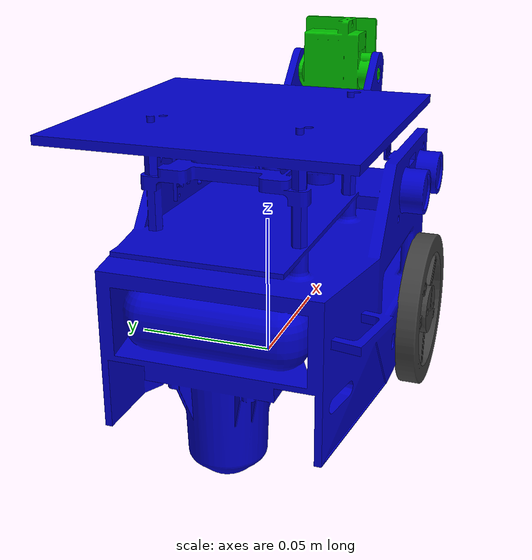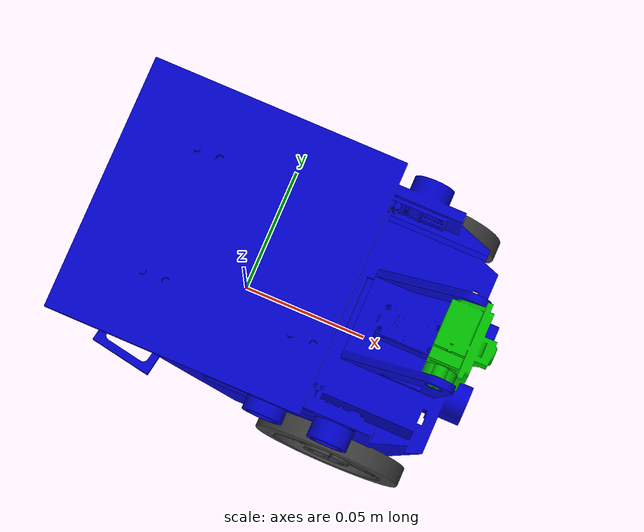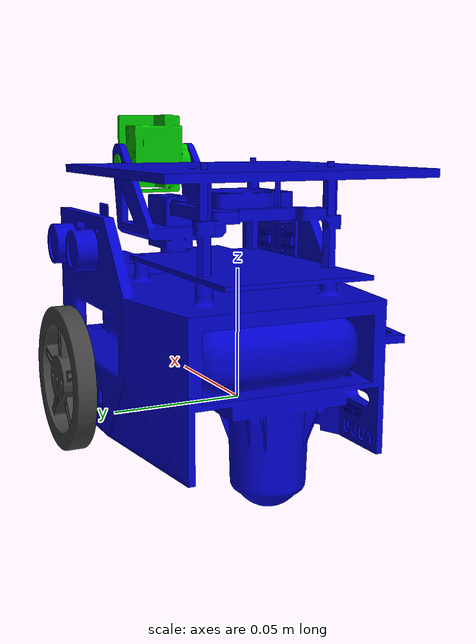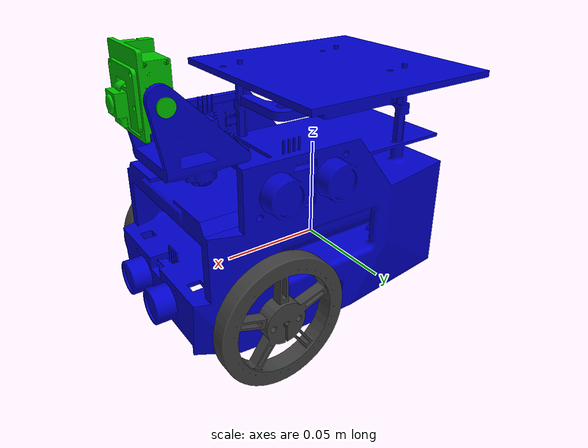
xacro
<?xml version="1.0"?>
<robot xmlns:xacro="http://www.ros.org/wiki/xacro" name="raspuma">

    <xacro:include filename="$(find raspuma_description)/urdf/raspuma.gazebo.xacro" />

    <link name="basefoot_print" />

    <joint name="basefoot_print_to_base_link_joint" type="fixed">
        <parent link="basefoot_print"/>
        <child link="base_link"/>
        <origin xyz="0.0 0.0 0.03" rpy="0.0 0.0 0.0"/>
    </joint>

    <link
        name="base_link">
        <inertial>
        <origin
            xyz="0.0 0.0 0.0"
            rpy="0 0 0" />
        <mass
            value="0.46603" />
        <inertia
            ixx="0.00051729"
            ixy="4.9118E-07"
            ixz="3.484E-08"
            iyy="0.00069099"
            iyz="-3.9114E-06"
            izz="0.00031881" />
        </inertial>
        <visual>
        <origin
            xyz="-0.27 0.013 0"
            rpy="0 0 1.57" />
        <geometry>
            <mesh
            filename="package://raspuma_description/meshes/base_link.STL" />
        </geometry>
        <material
            name="Blue">
            <color
            rgba="0 0 0.8 1" />
        </material>
        </visual>
        <collision>
        <origin
            xyz="0 0 0"
            rpy="0 0 0" />
        <geometry>
            <mesh
            filename="package://raspuma_description/meshes/base_link.STL" />
        </geometry>
        </collision>
    </link>

    <link
        name="right_wheel">
        <inertial>
        <origin
            xyz="0.0 0.0 0.0"
            rpy="0 0 0.0" />
        <mass
            value="0.012327" />
        <inertia
            ixx="3.5553E-06"
            ixy="-1.4437E-19"
            ixz="-9.4595E-19"
            iyy="3.5532E-06"
            iyz="-7.3105E-11"
            izz="6.9784E-06" />
        </inertial>
        <visual>
        <origin
            xyz="0 0 0"
            rpy="0 0 0" />
        <geometry>
            <mesh
            filename="package://raspuma_description/meshes/right_wheel.STL" />
        </geometry>
        <material
            name="grey">
            <color
            rgba="0.25098 0.25098 0.25098 1" />
        </material>
        </visual>
        <collision>
        <origin
            xyz="0 0 0"
            rpy="0 0 0" />
        <geometry>
            <mesh
            filename="package://raspuma_description/meshes/right_wheel.STL" />
        </geometry>
        </collision>
    </link>

    <joint
        name="base_right_to_wheel_joint"
        type="continuous">
        <origin
        xyz="0.055 0.045 -0.03"
        rpy="1.5708 0.0 0.0" />
        <parent
        link="base_link" />
        <child
        link="right_wheel" />
        <axis
        xyz="0 0 1" />
        <limit
        effort="0.08"
        velocity="18" />
    </joint>

    <link
        name="left_wheel">
        <inertial>
        <origin
            xyz="0.0 0.0 0.0"
            rpy="0 0 0" />
        <mass
            value="0.012327" />
        <inertia
            ixx="3.5552E-06"
            ixy="-3.7977E-10"
            ixz="-1.3221E-11"
            iyy="3.5532E-06"
            iyz="-7.19E-11"
            izz="6.9784E-06" />
        </inertial>
        <visual>
        <origin
            xyz="0 0 0"
            rpy="0 0 0" />
        <geometry>
            <mesh
            filename="package://raspuma_description/meshes/left_wheel.STL" />
        </geometry>
        <material
            name="grey">
            <color
            rgba="0.25098 0.25098 0.25098 1" />
        </material>
        </visual>
        <collision>
        <origin
            xyz="0 0 0"
            rpy="0 0 0" />
        <geometry>
            <mesh
            filename="package://raspuma_description/meshes/left_wheel.STL" />
        </geometry>
        </collision>
    </link>

    <joint
        name="base_left_to_wheel_joint"
        type="continuous">
        <origin
        xyz="0.055 -0.045 -0.03"
        rpy="1.5708 0 0.0" />
        <parent
        link="base_link" />
        <child
        link="left_wheel" />
        <axis
        xyz="0 0 1" />
        <limit
        effort="0.08"
        velocity="18" />
    </joint>
    <link
        name="body_cam">
        <inertial>
        <origin
            xyz="0.0077589 -0.00011356 0.014985"
            rpy="0 0 0" />
        <mass
            value="0.015993" />
        <inertia
            ixx="1.8893E-06"
            ixy="-1.7136E-07"
            ixz="-3.8471E-07"
            iyy="2.2804E-06"
            iyz="-3.8442E-07"
            izz="2.667E-06" />
        </inertial>
        <visual>
        <origin
            xyz="0 0 0"
            rpy="0 0 0" />
        <geometry>
            <mesh
            filename="package://raspuma_description/meshes/body_cam.STL" />
        </geometry>
        <material
            name="Blue_1">
            <color
            rgba="0 0 0.8 1" />
        </material>
        </visual>
        <collision>
        <origin
            xyz="0 0 0"
            rpy="0 0 0" />
        <geometry>
            <mesh
            filename="package://raspuma_description/meshes/body_cam.STL" />
        </geometry>
        </collision>
    </link>
    <joint
        name="base_to_body_cam"
        type="revolute">
        <origin
        xyz="0.06  0.0 0.019"
        rpy="0 0 0" />
        <parent
        link="base_link" />
        <child
        link="body_cam" />
        <axis
        xyz="0 0 1" />
        <limit
        lower="-1.57"
        upper="1.57"
        effort="0.176"
        velocity="0.166" />
    </joint>
    <link
        name="camera">
        <inertial>
        <origin
            xyz="0.0028256 0.00019085 0.0036585"
            rpy="0 0 0" />
        <mass
            value="0.011488" />
        <inertia
            ixx="9.9215E-07"
            ixy="2.2492E-08"
            ixz="-7.2374E-09"
            iyy="7.6855E-07"
            iyz="1.3763E-08"
            izz="4.5939E-07" />
        </inertial>
        <visual>
        <origin
            xyz="0 0 0"
            rpy="0 0 0" />
        <geometry>
            <mesh
            filename="package://raspuma_description/meshes/camera.STL" />
        </geometry>
        <material
            name="green">
            <color
            rgba="0 0.75294 0 1" />
        </material>
        </visual>
        <collision>
        <origin
            xyz="0 0 0"
            rpy="0 0 0" />
        <geometry>
            <mesh
            filename="package://raspuma_description/meshes/camera.STL" />
        </geometry>
        </collision>
    </link>
    <joint
        name="body_cam_to_camera"
        type="revolute">
        <origin
        xyz="0.022826 -0.00015 0.038482"
        rpy="0 0 0" />
        <parent
        link="body_cam" />
        <child
        link="camera" />
        <axis
        xyz="0 1 0" />
        <limit
        lower="-1.57"
        upper="1.57"
        effort="0.176"
        velocity="0.166" />
    </joint>

</robot>
